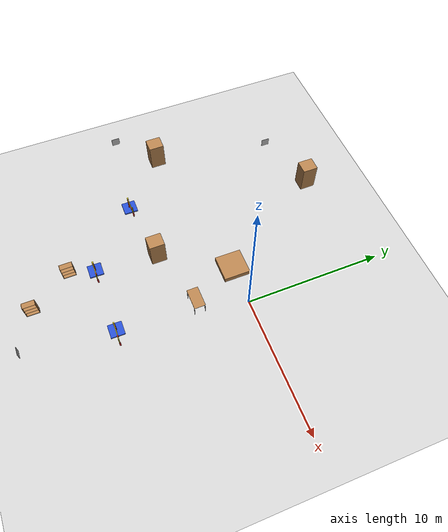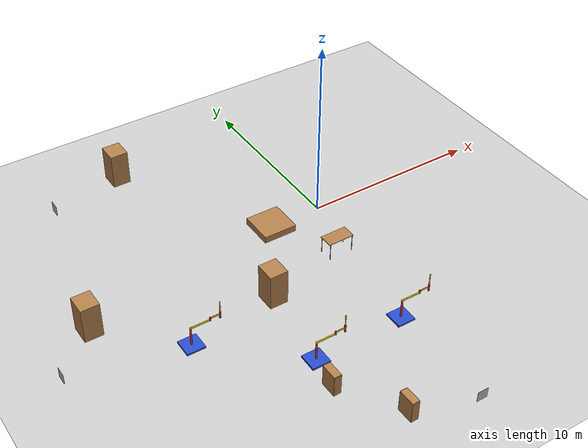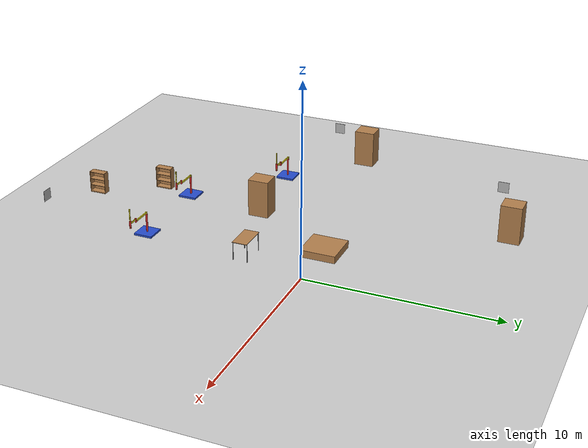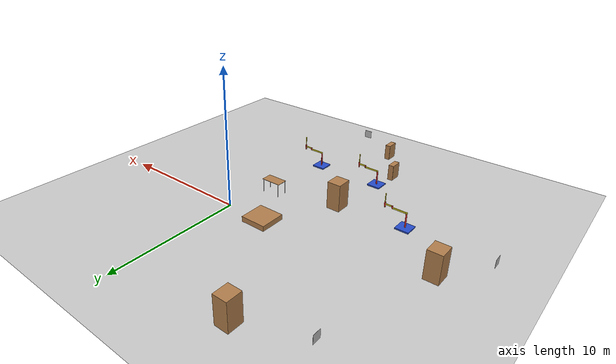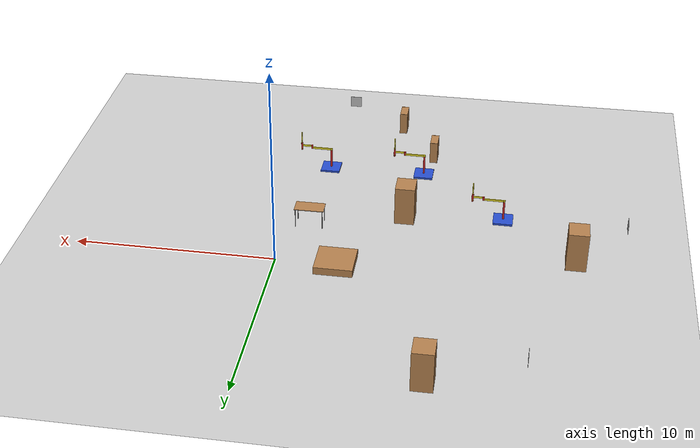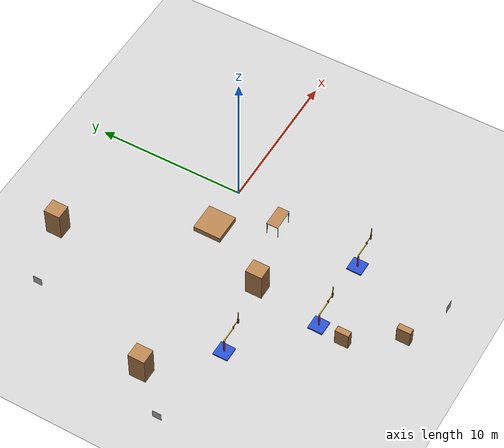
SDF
<sdf version="1.7">
 <world name="default">
  <model name="ground_plane">
   <static>1</static>
   <link name="link">
    <collision name="collision">
     <geometry><plane><normal>0 0 1</normal><size>25 25</size></plane></geometry>
     <surface><friction><ode><mu>100</mu><mu2>50</mu2></ode></friction></surface>
    </collision>
    <visual name="visual">
     <cast_shadows>0</cast_shadows>
     <geometry><plane><normal>0 0 1</normal><size>25 25</size></plane></geometry>
     <material>
      <script><uri>file://media/materials/scripts/gazebo.material</uri><name>Gazebo/Grey</name></script>
     </material>
    </visual>
   </link>
  </model>
  <model name="table">
   <static>0</static>
   <link name="link">
    <collision name="surface">
     <pose>0 0 1 0 -0 0</pose>
     <geometry><box><size>1.5 0.8 0.03</size></box></geometry>
     <surface><friction><ode><mu>0.6</mu><mu2>0.6</mu2></ode></friction></surface>
    </collision>
    <visual name="visual1">
     <pose>0 0 1 0 -0 0</pose>
     <geometry><box><size>1.5 0.8 0.03</size></box></geometry>
     <material>
      <script><uri>file://media/materials/scripts/gazebo.material</uri><name>Gazebo/Wood</name></script>
     </material>
    </visual>
    <collision name="front_left_leg">
     <pose>0.68 0.38 0.5 0 -0 0</pose>
     <geometry><cylinder><radius>0.02</radius><length>1</length></cylinder></geometry>
    </collision>
    <visual name="front_left_leg">
     <pose>0.68 0.38 0.5 0 -0 0</pose>
     <geometry><cylinder><radius>0.02</radius><length>1</length></cylinder></geometry>
     <material>
      <script><uri>file://media/materials/scripts/gazebo.material</uri><name>Gazebo/Grey</name></script>
     </material>
    </visual>
    <collision name="front_right_leg">
     <pose>0.68 -0.38 0.5 0 -0 0</pose>
     <geometry><cylinder><radius>0.02</radius><length>1</length></cylinder></geometry>
    </collision>
    <visual name="front_right_leg">
     <pose>0.68 -0.38 0.5 0 -0 0</pose>
     <geometry><cylinder><radius>0.02</radius><length>1</length></cylinder></geometry>
     <material>
      <script><uri>file://media/materials/scripts/gazebo.material</uri><name>Gazebo/Grey</name></script>
     </material>
    </visual>
    <collision name="back_right_leg">
     <pose>-0.68 -0.38 0.5 0 -0 0</pose>
     <geometry><cylinder><radius>0.02</radius><length>1</length></cylinder></geometry>
    </collision>
    <visual name="back_right_leg">
     <pose>-0.68 -0.38 0.5 0 -0 0</pose>
     <geometry><cylinder><radius>0.02</radius><length>1</length></cylinder></geometry>
     <material>
      <script><uri>file://media/materials/scripts/gazebo.material</uri><name>Gazebo/Grey</name></script>
     </material>
    </visual>
    <collision name="back_left_leg">
     <pose>-0.68 0.38 0.5 0 -0 0</pose>
     <geometry><cylinder><radius>0.02</radius><length>1</length></cylinder></geometry>
    </collision>
    <visual name="back_left_leg">
     <pose>-0.68 0.38 0.5 0 -0 0</pose>
     <geometry><cylinder><radius>0.02</radius><length>1</length></cylinder></geometry>
     <material>
      <script><uri>file://media/materials/scripts/gazebo.material</uri><name>Gazebo/Grey</name></script>
     </material>
    </visual>
    <inertial>
     <inertia><ixx>1</ixx><ixy>0</ixy><ixz>0</ixz><iyy>1</iyy><iyz>0</iyz><izz>1</izz></inertia>
     <mass>1</mass>
    </inertial>
   </link>
   <pose>-1.13936 -3.43966 -8e-06 -4e-06 1.4e-05 0.008417</pose>
  </model>
  <model name="unit_box_0">
   <pose>-2.99922 0.000744 0.193607 5e-06 -0 -0.000955</pose>
   <link name="link">
    <inertial>
     <mass>1</mass>
     <inertia>
      <ixx>0.166667</ixx>
      <ixy>0</ixy>
      <ixz>0</ixz>
      <iyy>0.166667</iyy>
      <iyz>0</iyz>
      <izz>0.166667</izz>
     </inertia>
    </inertial>
    <collision name="collision"><geometry><box><size>1.90824 1.89174 0.387223</size></box></geometry></collision>
    <visual name="visual">
     <geometry><box><size>1.90824 1.89174 0.387223</size></box></geometry>
     <material>
      <script><uri>file://media/materials/scripts/gazebo.material</uri><name>Gazebo/Wood</name></script>
     </material>
    </visual>
   </link>
   <static>0</static>
  </model>
  <model name="static_apriltag_5">
   <link name="link">
    <pose>0 0 0 -1.57 1.57 -0</pose>
    <inertial>
     <mass>0.39</mass>
     <inertia><ixx>0.00058</ixx><ixy>0</ixy><ixz>0</ixz><iyy>0.00058</iyy><iyz>0</iyz><izz>0.00019</izz></inertia>
    </inertial>
    <collision name="collision"><geometry><box><size>0.6 0.6 0.01</size></box></geometry></collision>
    <visual name="visual">
     <geometry><box><size>0.6 0.6 0.01</size></box></geometry>
     <material>
      <script>
       <uri>model://apriltag/materials/scripts</uri>
       <uri>model://apriltag/materials/textures</uri>
       <name>apriltag/Diffuse5</name>
      </script>
     </material>
    </visual>
    <gravity>0</gravity>
   </link>
   <pose>-1.76382 -15.4682 0.799894 0.000796 0.000796 1e-06</pose>
   <static>1</static>
   <pose>5.04082 3.71574 0 0 -0 0</pose>
  </model>
  <model name="static_apriltag_6">
   <link name="link">
    <pose>0 0 0 -1.57 1.57 -0</pose>
    <inertial>
     <mass>0.39</mass>
     <inertia><ixx>0.00058</ixx><ixy>0</ixy><ixz>0</ixz><iyy>0.00058</iyy><iyz>0</iyz><izz>0.00019</izz></inertia>
    </inertial>
    <collision name="collision"><geometry><box><size>0.6 0.6 0.01</size></box></geometry></collision>
    <visual name="visual">
     <geometry><box><size>0.6 0.6 0.01</size></box></geometry>
     <material>
      <script>
       <uri>model://apriltag/materials/scripts</uri>
       <uri>model://apriltag/materials/textures</uri>
       <name>apriltag/Diffuse6</name>
      </script>
     </material>
    </visual>
    <gravity>0</gravity>
   </link>
   <pose>-16.9494 -4.44599 0.799387 -0.000796 0.000796 -1.57</pose>
   <static>1</static>
   <pose>3.43144 4.34187 0 0 -0 0</pose>
  </model>
  <model name="static_apriltag_7">
   <link name="link">
    <inertial>
     <mass>0.39</mass>
     <inertia><ixx>0.00058</ixx><ixy>0</ixy><ixz>0</ixz><iyy>0.00058</iyy><iyz>0</iyz><izz>0.00019</izz></inertia>
    </inertial>
    <collision name="collision"><geometry><box><size>0.6 0.6 0.01</size></box></geometry></collision>
    <visual name="visual">
     <geometry><box><size>0.6 0.6 0.01</size></box></geometry>
     <material>
      <script>
       <uri>model://apriltag/materials/scripts</uri>
       <uri>model://apriltag/materials/textures</uri>
       <name>apriltag/Diffuse7</name>
      </script>
     </material>
    </visual>
    <gravity>0</gravity>
   </link>
   <pose>-12.4513 6.75415 0.8 1.57 -0 1.57</pose>
   <static>1</static>
   <pose>3.12393 4.47604 0 0 -0 0</pose>
  </model>
  <model name="simple_arm">
   <link name="arm_base">
    <inertial>
     <pose>0 0 0.00099 0 -0 0</pose>
     <inertia><ixx>1.11</ixx><ixy>0</ixy><ixz>0</ixz><iyy>100.11</iyy><iyz>0</iyz><izz>1.01</izz></inertia>
     <mass>101</mass>
    </inertial>
    <collision name="arm_base_geom">
     <pose>0 0 0.05 0 -0 0</pose>
     <geometry><box><size>1 1 0.1</size></box></geometry>
    </collision>
    <visual name="arm_base_geom_visual">
     <pose>0 0 0.05 0 -0 0</pose>
     <geometry><box><size>1 1 0.1</size></box></geometry>
     <material>
      <script><uri>file://media/materials/scripts/gazebo.material</uri><name>Gazebo/Blue</name></script>
     </material>
    </visual>
    <collision name="arm_base_geom_arm_trunk">
     <pose>0 0 0.6 0 -0 0</pose>
     <geometry><cylinder><radius>0.05</radius><length>1</length></cylinder></geometry>
    </collision>
    <visual name="arm_base_geom_arm_trunk_visual">
     <pose>0 0 0.6 0 -0 0</pose>
     <geometry><cylinder><radius>0.05</radius><length>1</length></cylinder></geometry>
     <material>
      <script><uri>file://media/materials/scripts/gazebo.material</uri><name>Gazebo/Red</name></script>
     </material>
    </visual>
   </link>
   <link name="arm_shoulder_pan">
    <pose>0 0 1.1 0 -0 0</pose>
    <inertial>
     <pose>0.045455 0 0 0 -0 0</pose>
     <inertia><ixx>0.011</ixx><ixy>0</ixy><ixz>0</ixz><iyy>0.0225</iyy><iyz>0</iyz><izz>0.0135</izz></inertia>
     <mass>1.1</mass>
    </inertial>
    <collision name="arm_shoulder_pan_geom">
     <pose>0 0 0.05 0 -0 0</pose>
     <geometry><cylinder><radius>0.05</radius><length>0.1</length></cylinder></geometry>
    </collision>
    <visual name="arm_shoulder_pan_geom_visual">
     <pose>0 0 0.05 0 -0 0</pose>
     <geometry><cylinder><radius>0.05</radius><length>0.1</length></cylinder></geometry>
     <material>
      <script><uri>file://media/materials/scripts/gazebo.material</uri><name>Gazebo/Yellow</name></script>
     </material>
    </visual>
    <collision name="arm_shoulder_pan_geom_arm_shoulder">
     <pose>0.55 0 0.05 0 -0 0</pose>
     <geometry><box><size>1 0.05 0.1</size></box></geometry>
    </collision>
    <visual name="arm_shoulder_pan_geom_arm_shoulder_visual">
     <pose>0.55 0 0.05 0 -0 0</pose>
     <geometry><box><size>1 0.05 0.1</size></box></geometry>
     <material>
      <script><uri>file://media/materials/scripts/gazebo.material</uri><name>Gazebo/Yellow</name></script>
     </material>
    </visual>
   </link>
   <link name="arm_elbow_pan">
    <pose>1.05 0 1.1 0 -0 0</pose>
    <inertial>
     <pose>0.0875 0 0.083333 0 -0 0</pose>
     <inertia>
      <ixx>0.031</ixx>
      <ixy>0</ixy>
      <ixz>0.005</ixz>
      <iyy>0.07275</iyy>
      <iyz>0</iyz>
      <izz>0.04475</izz>
     </inertia>
     <mass>1.2</mass>
    </inertial>
    <collision name="arm_elbow_pan_geom">
     <pose>0 0 0.1 0 -0 0</pose>
     <geometry><cylinder><radius>0.05</radius><length>0.2</length></cylinder></geometry>
    </collision>
    <visual name="arm_elbow_pan_geom_visual">
     <pose>0 0 0.1 0 -0 0</pose>
     <geometry><cylinder><radius>0.05</radius><length>0.2</length></cylinder></geometry>
     <material>
      <script><uri>file://media/materials/scripts/gazebo.material</uri><name>Gazebo/Red</name></script>
     </material>
    </visual>
    <collision name="arm_elbow_pan_geom_arm_elbow">
     <pose>0.3 0 0.15 0 -0 0</pose>
     <geometry><box><size>0.5 0.03 0.1</size></box></geometry>
    </collision>
    <visual name="arm_elbow_pan_geom_arm_elbow_visual">
     <pose>0.3 0 0.15 0 -0 0</pose>
     <geometry><box><size>0.5 0.03 0.1</size></box></geometry>
     <material>
      <script><uri>file://media/materials/scripts/gazebo.material</uri><name>Gazebo/Yellow</name></script>
     </material>
    </visual>
    <collision name="arm_elbow_pan_geom_arm_wrist">
     <pose>0.55 0 0.15 0 -0 0</pose>
     <geometry><cylinder><radius>0.05</radius><length>0.3</length></cylinder></geometry>
    </collision>
    <visual name="arm_elbow_pan_geom_arm_wrist_visual">
     <pose>0.55 0 0.15 0 -0 0</pose>
     <geometry><cylinder><radius>0.05</radius><length>0.3</length></cylinder></geometry>
     <material>
      <script><uri>file://media/materials/scripts/gazebo.material</uri><name>Gazebo/Red</name></script>
     </material>
    </visual>
   </link>
   <link name="arm_wrist_lift">
    <pose>1.6 0 1.05 0 -0 0</pose>
    <inertial>
     <inertia><ixx>0.01</ixx><ixy>0</ixy><ixz>0</ixz><iyy>0.01</iyy><iyz>0</iyz><izz>0.001</izz></inertia>
     <mass>0.1</mass>
    </inertial>
    <collision name="arm_wrist_lift_geom">
     <pose>0 0 0.5 0 -0 0</pose>
     <geometry><cylinder><radius>0.03</radius><length>1</length></cylinder></geometry>
    </collision>
    <visual name="arm_wrist_lift_geom_visual">
     <pose>0 0 0.5 0 -0 0</pose>
     <geometry><cylinder><radius>0.03</radius><length>1</length></cylinder></geometry>
     <material>
      <script><uri>file://media/materials/scripts/gazebo.material</uri><name>Gazebo/Yellow</name></script>
     </material>
    </visual>
   </link>
   <link name="arm_wrist_roll">
    <pose>1.6 0 1 0 -0 0</pose>
    <inertial>
     <inertia><ixx>0.01</ixx><ixy>0</ixy><ixz>0</ixz><iyy>0.01</iyy><iyz>0</iyz><izz>0.001</izz></inertia>
     <mass>0.1</mass>
    </inertial>
    <collision name="arm_wrist_roll_geom">
     <pose>0 0 0.025 0 -0 0</pose>
     <geometry><cylinder><radius>0.05</radius><length>0.05</length></cylinder></geometry>
    </collision>
    <visual name="arm_wrist_roll_geom_visual">
     <pose>0 0 0.025 0 -0 0</pose>
     <geometry><cylinder><radius>0.05</radius><length>0.05</length></cylinder></geometry>
     <material>
      <script><uri>file://media/materials/scripts/gazebo.material</uri><name>Gazebo/Red</name></script>
     </material>
    </visual>
   </link>
   <joint name="arm_shoulder_pan_joint" type="revolute">
    <parent>arm_base</parent>
    <child>arm_shoulder_pan</child>
    <axis>
     <dynamics>
      <damping>1</damping>
      <friction>0</friction>
      <spring_reference>0</spring_reference>
      <spring_stiffness>0</spring_stiffness>
     </dynamics>
     <xyz expressed_in="__model__">0 0 1</xyz>
     <limit><lower>-1e+16</lower><upper>1e+16</upper></limit>
    </axis>
   </joint>
   <joint name="arm_elbow_pan_joint" type="revolute">
    <parent>arm_shoulder_pan</parent>
    <child>arm_elbow_pan</child>
    <axis>
     <dynamics>
      <damping>1</damping>
      <friction>0</friction>
      <spring_reference>0</spring_reference>
      <spring_stiffness>0</spring_stiffness>
     </dynamics>
     <xyz expressed_in="__model__">0 0 1</xyz>
     <limit><lower>-1e+16</lower><upper>1e+16</upper></limit>
    </axis>
   </joint>
   <joint name="arm_wrist_lift_joint" type="prismatic">
    <parent>arm_elbow_pan</parent>
    <child>arm_wrist_lift</child>
    <axis>
     <dynamics>
      <damping>1</damping>
      <friction>0</friction>
      <spring_reference>0</spring_reference>
      <spring_stiffness>0</spring_stiffness>
     </dynamics>
     <limit><lower>-0.8</lower><upper>0.1</upper></limit>
     <xyz expressed_in="__model__">0 0 1</xyz>
    </axis>
   </joint>
   <joint name="arm_wrist_roll_joint" type="revolute">
    <parent>arm_wrist_lift</parent>
    <child>arm_wrist_roll</child>
    <axis>
     <dynamics>
      <damping>1</damping>
      <friction>0</friction>
      <spring_reference>0</spring_reference>
      <spring_stiffness>0</spring_stiffness>
     </dynamics>
     <limit><lower>-2.99999</lower><upper>2.99999</upper></limit>
     <xyz expressed_in="__model__">0 0 1</xyz>
    </axis>
   </joint>
   <pose>-10.7863 -5.27849 -0 0 -0 -0.006445</pose>
  </model>
  <model name="simple_arm_clone">
   <link name="arm_base">
    <inertial>
     <pose>0 0 0.00099 0 -0 0</pose>
     <inertia><ixx>1.11</ixx><ixy>0</ixy><ixz>0</ixz><iyy>100.11</iyy><iyz>0</iyz><izz>1.01</izz></inertia>
     <mass>101</mass>
    </inertial>
    <collision name="arm_base_geom">
     <pose>0 0 0.05 0 -0 0</pose>
     <geometry><box><size>1 1 0.1</size></box></geometry>
    </collision>
    <visual name="arm_base_geom_visual">
     <pose>0 0 0.05 0 -0 0</pose>
     <geometry><box><size>1 1 0.1</size></box></geometry>
     <material>
      <script><uri>file://media/materials/scripts/gazebo.material</uri><name>Gazebo/Blue</name></script>
     </material>
    </visual>
    <collision name="arm_base_geom_arm_trunk">
     <pose>0 0 0.6 0 -0 0</pose>
     <geometry><cylinder><radius>0.05</radius><length>1</length></cylinder></geometry>
    </collision>
    <visual name="arm_base_geom_arm_trunk_visual">
     <pose>0 0 0.6 0 -0 0</pose>
     <geometry><cylinder><radius>0.05</radius><length>1</length></cylinder></geometry>
     <material>
      <script><uri>file://media/materials/scripts/gazebo.material</uri><name>Gazebo/Red</name></script>
     </material>
    </visual>
   </link>
   <link name="arm_shoulder_pan">
    <pose>0 0 1.1 0 -0 0</pose>
    <inertial>
     <pose>0.045455 0 0 0 -0 0</pose>
     <inertia><ixx>0.011</ixx><ixy>0</ixy><ixz>0</ixz><iyy>0.0225</iyy><iyz>0</iyz><izz>0.0135</izz></inertia>
     <mass>1.1</mass>
    </inertial>
    <collision name="arm_shoulder_pan_geom">
     <pose>0 0 0.05 0 -0 0</pose>
     <geometry><cylinder><radius>0.05</radius><length>0.1</length></cylinder></geometry>
    </collision>
    <visual name="arm_shoulder_pan_geom_visual">
     <pose>0 0 0.05 0 -0 0</pose>
     <geometry><cylinder><radius>0.05</radius><length>0.1</length></cylinder></geometry>
     <material>
      <script><uri>file://media/materials/scripts/gazebo.material</uri><name>Gazebo/Yellow</name></script>
     </material>
    </visual>
    <collision name="arm_shoulder_pan_geom_arm_shoulder">
     <pose>0.55 0 0.05 0 -0 0</pose>
     <geometry><box><size>1 0.05 0.1</size></box></geometry>
    </collision>
    <visual name="arm_shoulder_pan_geom_arm_shoulder_visual">
     <pose>0.55 0 0.05 0 -0 0</pose>
     <geometry><box><size>1 0.05 0.1</size></box></geometry>
     <material>
      <script><uri>file://media/materials/scripts/gazebo.material</uri><name>Gazebo/Yellow</name></script>
     </material>
    </visual>
   </link>
   <link name="arm_elbow_pan">
    <pose>1.05 0 1.1 0 -0 0</pose>
    <inertial>
     <pose>0.0875 0 0.083333 0 -0 0</pose>
     <inertia>
      <ixx>0.031</ixx>
      <ixy>0</ixy>
      <ixz>0.005</ixz>
      <iyy>0.07275</iyy>
      <iyz>0</iyz>
      <izz>0.04475</izz>
     </inertia>
     <mass>1.2</mass>
    </inertial>
    <collision name="arm_elbow_pan_geom">
     <pose>0 0 0.1 0 -0 0</pose>
     <geometry><cylinder><radius>0.05</radius><length>0.2</length></cylinder></geometry>
    </collision>
    <visual name="arm_elbow_pan_geom_visual">
     <pose>0 0 0.1 0 -0 0</pose>
     <geometry><cylinder><radius>0.05</radius><length>0.2</length></cylinder></geometry>
     <material>
      <script><uri>file://media/materials/scripts/gazebo.material</uri><name>Gazebo/Red</name></script>
     </material>
    </visual>
    <collision name="arm_elbow_pan_geom_arm_elbow">
     <pose>0.3 0 0.15 0 -0 0</pose>
     <geometry><box><size>0.5 0.03 0.1</size></box></geometry>
    </collision>
    <visual name="arm_elbow_pan_geom_arm_elbow_visual">
     <pose>0.3 0 0.15 0 -0 0</pose>
     <geometry><box><size>0.5 0.03 0.1</size></box></geometry>
     <material>
      <script><uri>file://media/materials/scripts/gazebo.material</uri><name>Gazebo/Yellow</name></script>
     </material>
    </visual>
    <collision name="arm_elbow_pan_geom_arm_wrist">
     <pose>0.55 0 0.15 0 -0 0</pose>
     <geometry><cylinder><radius>0.05</radius><length>0.3</length></cylinder></geometry>
    </collision>
    <visual name="arm_elbow_pan_geom_arm_wrist_visual">
     <pose>0.55 0 0.15 0 -0 0</pose>
     <geometry><cylinder><radius>0.05</radius><length>0.3</length></cylinder></geometry>
     <material>
      <script><uri>file://media/materials/scripts/gazebo.material</uri><name>Gazebo/Red</name></script>
     </material>
    </visual>
   </link>
   <link name="arm_wrist_lift">
    <pose>1.6 0 1.05 0 -0 0</pose>
    <inertial>
     <inertia><ixx>0.01</ixx><ixy>0</ixy><ixz>0</ixz><iyy>0.01</iyy><iyz>0</iyz><izz>0.001</izz></inertia>
     <mass>0.1</mass>
    </inertial>
    <collision name="arm_wrist_lift_geom">
     <pose>0 0 0.5 0 -0 0</pose>
     <geometry><cylinder><radius>0.03</radius><length>1</length></cylinder></geometry>
    </collision>
    <visual name="arm_wrist_lift_geom_visual">
     <pose>0 0 0.5 0 -0 0</pose>
     <geometry><cylinder><radius>0.03</radius><length>1</length></cylinder></geometry>
     <material>
      <script><uri>file://media/materials/scripts/gazebo.material</uri><name>Gazebo/Yellow</name></script>
     </material>
    </visual>
   </link>
   <link name="arm_wrist_roll">
    <pose>1.6 0 1 0 -0 0</pose>
    <inertial>
     <inertia><ixx>0.01</ixx><ixy>0</ixy><ixz>0</ixz><iyy>0.01</iyy><iyz>0</iyz><izz>0.001</izz></inertia>
     <mass>0.1</mass>
    </inertial>
    <collision name="arm_wrist_roll_geom">
     <pose>0 0 0.025 0 -0 0</pose>
     <geometry><cylinder><radius>0.05</radius><length>0.05</length></cylinder></geometry>
    </collision>
    <visual name="arm_wrist_roll_geom_visual">
     <pose>0 0 0.025 0 -0 0</pose>
     <geometry><cylinder><radius>0.05</radius><length>0.05</length></cylinder></geometry>
     <material>
      <script><uri>file://media/materials/scripts/gazebo.material</uri><name>Gazebo/Red</name></script>
     </material>
    </visual>
   </link>
   <joint name="arm_shoulder_pan_joint" type="revolute">
    <parent>arm_base</parent>
    <child>arm_shoulder_pan</child>
    <axis>
     <dynamics>
      <damping>1</damping>
      <friction>0</friction>
      <spring_reference>0</spring_reference>
      <spring_stiffness>0</spring_stiffness>
     </dynamics>
     <xyz expressed_in="__model__">0 0 1</xyz>
     <limit><lower>-1e+16</lower><upper>1e+16</upper></limit>
    </axis>
   </joint>
   <joint name="arm_elbow_pan_joint" type="revolute">
    <parent>arm_shoulder_pan</parent>
    <child>arm_elbow_pan</child>
    <axis>
     <dynamics>
      <damping>1</damping>
      <friction>0</friction>
      <spring_reference>0</spring_reference>
      <spring_stiffness>0</spring_stiffness>
     </dynamics>
     <xyz expressed_in="__model__">0 0 1</xyz>
     <limit><lower>-1e+16</lower><upper>1e+16</upper></limit>
    </axis>
   </joint>
   <joint name="arm_wrist_lift_joint" type="prismatic">
    <parent>arm_elbow_pan</parent>
    <child>arm_wrist_lift</child>
    <axis>
     <dynamics>
      <damping>1</damping>
      <friction>0</friction>
      <spring_reference>0</spring_reference>
      <spring_stiffness>0</spring_stiffness>
     </dynamics>
     <limit><lower>-0.8</lower><upper>0.1</upper></limit>
     <xyz expressed_in="__model__">0 0 1</xyz>
    </axis>
   </joint>
   <joint name="arm_wrist_roll_joint" type="revolute">
    <parent>arm_wrist_lift</parent>
    <child>arm_wrist_roll</child>
    <axis>
     <dynamics>
      <damping>1</damping>
      <friction>0</friction>
      <spring_reference>0</spring_reference>
      <spring_stiffness>0</spring_stiffness>
     </dynamics>
     <limit><lower>-2.99999</lower><upper>2.99999</upper></limit>
     <xyz expressed_in="__model__">0 0 1</xyz>
    </axis>
   </joint>
   <pose>-1.32699 -9.13308 -0 0 -0 -0.008676</pose>
  </model>
  <model name="simple_arm_clone_0">
   <link name="arm_base">
    <inertial>
     <pose>0 0 0.00099 0 -0 0</pose>
     <inertia><ixx>1.11</ixx><ixy>0</ixy><ixz>0</ixz><iyy>100.11</iyy><iyz>0</iyz><izz>1.01</izz></inertia>
     <mass>101</mass>
    </inertial>
    <collision name="arm_base_geom">
     <pose>0 0 0.05 0 -0 0</pose>
     <geometry><box><size>1 1 0.1</size></box></geometry>
    </collision>
    <visual name="arm_base_geom_visual">
     <pose>0 0 0.05 0 -0 0</pose>
     <geometry><box><size>1 1 0.1</size></box></geometry>
     <material>
      <script><uri>file://media/materials/scripts/gazebo.material</uri><name>Gazebo/Blue</name></script>
     </material>
    </visual>
    <collision name="arm_base_geom_arm_trunk">
     <pose>0 0 0.6 0 -0 0</pose>
     <geometry><cylinder><radius>0.05</radius><length>1</length></cylinder></geometry>
    </collision>
    <visual name="arm_base_geom_arm_trunk_visual">
     <pose>0 0 0.6 0 -0 0</pose>
     <geometry><cylinder><radius>0.05</radius><length>1</length></cylinder></geometry>
     <material>
      <script><uri>file://media/materials/scripts/gazebo.material</uri><name>Gazebo/Red</name></script>
     </material>
    </visual>
   </link>
   <link name="arm_shoulder_pan">
    <pose>0 0 1.1 0 -0 0</pose>
    <inertial>
     <pose>0.045455 0 0 0 -0 0</pose>
     <inertia><ixx>0.011</ixx><ixy>0</ixy><ixz>0</ixz><iyy>0.0225</iyy><iyz>0</iyz><izz>0.0135</izz></inertia>
     <mass>1.1</mass>
    </inertial>
    <collision name="arm_shoulder_pan_geom">
     <pose>0 0 0.05 0 -0 0</pose>
     <geometry><cylinder><radius>0.05</radius><length>0.1</length></cylinder></geometry>
    </collision>
    <visual name="arm_shoulder_pan_geom_visual">
     <pose>0 0 0.05 0 -0 0</pose>
     <geometry><cylinder><radius>0.05</radius><length>0.1</length></cylinder></geometry>
     <material>
      <script><uri>file://media/materials/scripts/gazebo.material</uri><name>Gazebo/Yellow</name></script>
     </material>
    </visual>
    <collision name="arm_shoulder_pan_geom_arm_shoulder">
     <pose>0.55 0 0.05 0 -0 0</pose>
     <geometry><box><size>1 0.05 0.1</size></box></geometry>
    </collision>
    <visual name="arm_shoulder_pan_geom_arm_shoulder_visual">
     <pose>0.55 0 0.05 0 -0 0</pose>
     <geometry><box><size>1 0.05 0.1</size></box></geometry>
     <material>
      <script><uri>file://media/materials/scripts/gazebo.material</uri><name>Gazebo/Yellow</name></script>
     </material>
    </visual>
   </link>
   <link name="arm_elbow_pan">
    <pose>1.05 0 1.1 0 -0 0</pose>
    <inertial>
     <pose>0.0875 0 0.083333 0 -0 0</pose>
     <inertia>
      <ixx>0.031</ixx>
      <ixy>0</ixy>
      <ixz>0.005</ixz>
      <iyy>0.07275</iyy>
      <iyz>0</iyz>
      <izz>0.04475</izz>
     </inertia>
     <mass>1.2</mass>
    </inertial>
    <collision name="arm_elbow_pan_geom">
     <pose>0 0 0.1 0 -0 0</pose>
     <geometry><cylinder><radius>0.05</radius><length>0.2</length></cylinder></geometry>
    </collision>
    <visual name="arm_elbow_pan_geom_visual">
     <pose>0 0 0.1 0 -0 0</pose>
     <geometry><cylinder><radius>0.05</radius><length>0.2</length></cylinder></geometry>
     <material>
      <script><uri>file://media/materials/scripts/gazebo.material</uri><name>Gazebo/Red</name></script>
     </material>
    </visual>
    <collision name="arm_elbow_pan_geom_arm_elbow">
     <pose>0.3 0 0.15 0 -0 0</pose>
     <geometry><box><size>0.5 0.03 0.1</size></box></geometry>
    </collision>
    <visual name="arm_elbow_pan_geom_arm_elbow_visual">
     <pose>0.3 0 0.15 0 -0 0</pose>
     <geometry><box><size>0.5 0.03 0.1</size></box></geometry>
     <material>
      <script><uri>file://media/materials/scripts/gazebo.material</uri><name>Gazebo/Yellow</name></script>
     </material>
    </visual>
    <collision name="arm_elbow_pan_geom_arm_wrist">
     <pose>0.55 0 0.15 0 -0 0</pose>
     <geometry><cylinder><radius>0.05</radius><length>0.3</length></cylinder></geometry>
    </collision>
    <visual name="arm_elbow_pan_geom_arm_wrist_visual">
     <pose>0.55 0 0.15 0 -0 0</pose>
     <geometry><cylinder><radius>0.05</radius><length>0.3</length></cylinder></geometry>
     <material>
      <script><uri>file://media/materials/scripts/gazebo.material</uri><name>Gazebo/Red</name></script>
     </material>
    </visual>
   </link>
   <link name="arm_wrist_lift">
    <pose>1.6 0 1.05 0 -0 0</pose>
    <inertial>
     <inertia><ixx>0.01</ixx><ixy>0</ixy><ixz>0</ixz><iyy>0.01</iyy><iyz>0</iyz><izz>0.001</izz></inertia>
     <mass>0.1</mass>
    </inertial>
    <collision name="arm_wrist_lift_geom">
     <pose>0 0 0.5 0 -0 0</pose>
     <geometry><cylinder><radius>0.03</radius><length>1</length></cylinder></geometry>
    </collision>
    <visual name="arm_wrist_lift_geom_visual">
     <pose>0 0 0.5 0 -0 0</pose>
     <geometry><cylinder><radius>0.03</radius><length>1</length></cylinder></geometry>
     <material>
      <script><uri>file://media/materials/scripts/gazebo.material</uri><name>Gazebo/Yellow</name></script>
     </material>
    </visual>
   </link>
   <link name="arm_wrist_roll">
    <pose>1.6 0 1 0 -0 0</pose>
    <inertial>
     <inertia><ixx>0.01</ixx><ixy>0</ixy><ixz>0</ixz><iyy>0.01</iyy><iyz>0</iyz><izz>0.001</izz></inertia>
     <mass>0.1</mass>
    </inertial>
    <collision name="arm_wrist_roll_geom">
     <pose>0 0 0.025 0 -0 0</pose>
     <geometry><cylinder><radius>0.05</radius><length>0.05</length></cylinder></geometry>
    </collision>
    <visual name="arm_wrist_roll_geom_visual">
     <pose>0 0 0.025 0 -0 0</pose>
     <geometry><cylinder><radius>0.05</radius><length>0.05</length></cylinder></geometry>
     <material>
      <script><uri>file://media/materials/scripts/gazebo.material</uri><name>Gazebo/Red</name></script>
     </material>
    </visual>
   </link>
   <joint name="arm_shoulder_pan_joint" type="revolute">
    <parent>arm_base</parent>
    <child>arm_shoulder_pan</child>
    <axis>
     <dynamics>
      <damping>1</damping>
      <friction>0</friction>
      <spring_reference>0</spring_reference>
      <spring_stiffness>0</spring_stiffness>
     </dynamics>
     <xyz expressed_in="__model__">0 0 1</xyz>
     <limit><lower>-1e+16</lower><upper>1e+16</upper></limit>
    </axis>
   </joint>
   <joint name="arm_elbow_pan_joint" type="revolute">
    <parent>arm_shoulder_pan</parent>
    <child>arm_elbow_pan</child>
    <axis>
     <dynamics>
      <damping>1</damping>
      <friction>0</friction>
      <spring_reference>0</spring_reference>
      <spring_stiffness>0</spring_stiffness>
     </dynamics>
     <xyz expressed_in="__model__">0 0 1</xyz>
     <limit><lower>-1e+16</lower><upper>1e+16</upper></limit>
    </axis>
   </joint>
   <joint name="arm_wrist_lift_joint" type="prismatic">
    <parent>arm_elbow_pan</parent>
    <child>arm_wrist_lift</child>
    <axis>
     <dynamics>
      <damping>1</damping>
      <friction>0</friction>
      <spring_reference>0</spring_reference>
      <spring_stiffness>0</spring_stiffness>
     </dynamics>
     <limit><lower>-0.8</lower><upper>0.1</upper></limit>
     <xyz expressed_in="__model__">0 0 1</xyz>
    </axis>
   </joint>
   <joint name="arm_wrist_roll_joint" type="revolute">
    <parent>arm_wrist_lift</parent>
    <child>arm_wrist_roll</child>
    <axis>
     <dynamics>
      <damping>1</damping>
      <friction>0</friction>
      <spring_reference>0</spring_reference>
      <spring_stiffness>0</spring_stiffness>
     </dynamics>
     <limit><lower>-2.99999</lower><upper>2.99999</upper></limit>
     <xyz expressed_in="__model__">0 0 1</xyz>
    </axis>
   </joint>
   <pose>-6.34372 -9.19745 -0 0 -0 -0.008681</pose>
  </model>
  <model name="bookshelf_clone">
   <static>1</static>
   <link name="link">
    <inertial><mass>1</mass></inertial>
    <collision name="back">
     <pose>0 0.005 0.6 0 -0 0</pose>
     <geometry><box><size>0.9 0.01 1.2</size></box></geometry>
    </collision>
    <visual name="visual1">
     <pose>0 0.005 0.6 0 -0 0</pose>
     <geometry><box><size>0.9 0.01 1.2</size></box></geometry>
     <material>
      <script><uri>file://media/materials/scripts/gazebo.material</uri><name>Gazebo/Wood</name></script>
     </material>
    </visual>
    <collision name="left_side">
     <pose>0.45 -0.195 0.6 0 -0 0</pose>
     <geometry><box><size>0.02 0.4 1.2</size></box></geometry>
    </collision>
    <visual name="visual2">
     <pose>0.45 -0.195 0.6 0 -0 0</pose>
     <geometry><box><size>0.02 0.4 1.2</size></box></geometry>
     <material>
      <script><uri>file://media/materials/scripts/gazebo.material</uri><name>Gazebo/Wood</name></script>
     </material>
    </visual>
    <collision name="right_side">
     <pose>-0.45 -0.195 0.6 0 -0 0</pose>
     <geometry><box><size>0.02 0.4 1.2</size></box></geometry>
    </collision>
    <visual name="visual3">
     <pose>-0.45 -0.195 0.6 0 -0 0</pose>
     <geometry><box><size>0.02 0.4 1.2</size></box></geometry>
     <material>
      <script><uri>file://media/materials/scripts/gazebo.material</uri><name>Gazebo/Wood</name></script>
     </material>
    </visual>
    <collision name="bottom">
     <pose>0 -0.195 0.03 0 -0 0</pose>
     <geometry><box><size>0.88 0.4 0.06</size></box></geometry>
    </collision>
    <visual name="visual4">
     <pose>0 -0.195 0.03 0 -0 0</pose>
     <geometry><box><size>0.88 0.4 0.06</size></box></geometry>
     <material>
      <script><uri>file://media/materials/scripts/gazebo.material</uri><name>Gazebo/Wood</name></script>
     </material>
    </visual>
    <collision name="top">
     <pose>0 -0.195 1.19 0 -0 0</pose>
     <geometry><box><size>0.88 0.4 0.02</size></box></geometry>
    </collision>
    <visual name="visual5">
     <pose>0 -0.195 1.19 0 -0 0</pose>
     <geometry><box><size>0.88 0.4 0.02</size></box></geometry>
     <material>
      <script><uri>file://media/materials/scripts/gazebo.material</uri><name>Gazebo/Wood</name></script>
     </material>
    </visual>
    <collision name="low_shelf">
     <pose>0 -0.195 0.43 0 -0 0</pose>
     <geometry><box><size>0.88 0.4 0.02</size></box></geometry>
    </collision>
    <visual name="visual6">
     <pose>0 -0.195 0.43 0 -0 0</pose>
     <geometry><box><size>0.88 0.4 0.02</size></box></geometry>
     <material>
      <script><uri>file://media/materials/scripts/gazebo.material</uri><name>Gazebo/Wood</name></script>
     </material>
    </visual>
    <collision name="high_shelf">
     <pose>0 -0.195 0.8 0 -0 0</pose>
     <geometry><box><size>0.88 0.4 0.02</size></box></geometry>
    </collision>
    <visual name="visual7">
     <pose>0 -0.195 0.8 0 -0 0</pose>
     <geometry><box><size>0.88 0.4 0.02</size></box></geometry>
     <material>
      <script><uri>file://media/materials/scripts/gazebo.material</uri><name>Gazebo/Wood</name></script>
     </material>
    </visual>
   </link>
   <pose>-6.91893 -11.004 0 0 -0 1.57</pose>
  </model>
  <model name="bookshelf_clone_1">
   <static>1</static>
   <link name="link">
    <inertial><mass>1</mass></inertial>
    <collision name="back">
     <pose>0 0.005 0.6 0 -0 0</pose>
     <geometry><box><size>0.9 0.01 1.2</size></box></geometry>
    </collision>
    <visual name="visual1">
     <pose>0 0.005 0.6 0 -0 0</pose>
     <geometry><box><size>0.9 0.01 1.2</size></box></geometry>
     <material>
      <script><uri>file://media/materials/scripts/gazebo.material</uri><name>Gazebo/Wood</name></script>
     </material>
    </visual>
    <collision name="left_side">
     <pose>0.45 -0.195 0.6 0 -0 0</pose>
     <geometry><box><size>0.02 0.4 1.2</size></box></geometry>
    </collision>
    <visual name="visual2">
     <pose>0.45 -0.195 0.6 0 -0 0</pose>
     <geometry><box><size>0.02 0.4 1.2</size></box></geometry>
     <material>
      <script><uri>file://media/materials/scripts/gazebo.material</uri><name>Gazebo/Wood</name></script>
     </material>
    </visual>
    <collision name="right_side">
     <pose>-0.45 -0.195 0.6 0 -0 0</pose>
     <geometry><box><size>0.02 0.4 1.2</size></box></geometry>
    </collision>
    <visual name="visual3">
     <pose>-0.45 -0.195 0.6 0 -0 0</pose>
     <geometry><box><size>0.02 0.4 1.2</size></box></geometry>
     <material>
      <script><uri>file://media/materials/scripts/gazebo.material</uri><name>Gazebo/Wood</name></script>
     </material>
    </visual>
    <collision name="bottom">
     <pose>0 -0.195 0.03 0 -0 0</pose>
     <geometry><box><size>0.88 0.4 0.06</size></box></geometry>
    </collision>
    <visual name="visual4">
     <pose>0 -0.195 0.03 0 -0 0</pose>
     <geometry><box><size>0.88 0.4 0.06</size></box></geometry>
     <material>
      <script><uri>file://media/materials/scripts/gazebo.material</uri><name>Gazebo/Wood</name></script>
     </material>
    </visual>
    <collision name="top">
     <pose>0 -0.195 1.19 0 -0 0</pose>
     <geometry><box><size>0.88 0.4 0.02</size></box></geometry>
    </collision>
    <visual name="visual5">
     <pose>0 -0.195 1.19 0 -0 0</pose>
     <geometry><box><size>0.88 0.4 0.02</size></box></geometry>
     <material>
      <script><uri>file://media/materials/scripts/gazebo.material</uri><name>Gazebo/Wood</name></script>
     </material>
    </visual>
    <collision name="low_shelf">
     <pose>0 -0.195 0.43 0 -0 0</pose>
     <geometry><box><size>0.88 0.4 0.02</size></box></geometry>
    </collision>
    <visual name="visual6">
     <pose>0 -0.195 0.43 0 -0 0</pose>
     <geometry><box><size>0.88 0.4 0.02</size></box></geometry>
     <material>
      <script><uri>file://media/materials/scripts/gazebo.material</uri><name>Gazebo/Wood</name></script>
     </material>
    </visual>
    <collision name="high_shelf">
     <pose>0 -0.195 0.8 0 -0 0</pose>
     <geometry><box><size>0.88 0.4 0.02</size></box></geometry>
    </collision>
    <visual name="visual7">
     <pose>0 -0.195 0.8 0 -0 0</pose>
     <geometry><box><size>0.88 0.4 0.02</size></box></geometry>
     <material>
      <script><uri>file://media/materials/scripts/gazebo.material</uri><name>Gazebo/Wood</name></script>
     </material>
    </visual>
   </link>
   <pose>-4.92762 -14.0554 0 0 -0 1.57</pose>
  </model>
  <model name="unit_box_clone">
   <pose>-5.84565 -4.68859 1.01795 -4e-06 2e-06 0.001908</pose>
   <link name="link">
    <inertial>
     <mass>1</mass>
     <inertia>
      <ixx>0.166667</ixx>
      <ixy>0</ixy>
      <ixz>0</ixz>
      <iyy>0.166667</iyy>
      <iyz>0</iyz>
      <izz>0.166667</izz>
     </inertia>
    </inertial>
    <collision name="collision"><geometry><box><size>1 1.11313 2.03591</size></box></geometry></collision>
    <visual name="visual">
     <geometry><box><size>1 1.11313 2.03591</size></box></geometry>
     <material>
      <script><uri>file://media/materials/scripts/gazebo.material</uri><name>Gazebo/Wood</name></script>
     </material>
    </visual>
   </link>
   <static>0</static>
  </model>
  <model name="unit_box_clone_0">
   <pose>-14.4595 -1.84525 1.01795 1e-06 -1e-06 0.001827</pose>
   <link name="link">
    <inertial>
     <mass>1</mass>
     <inertia>
      <ixx>0.166667</ixx>
      <ixy>0</ixy>
      <ixz>0</ixz>
      <iyy>0.166667</iyy>
      <iyz>0</iyz>
      <izz>0.166667</izz>
     </inertia>
    </inertial>
    <collision name="collision"><geometry><box><size>1 1.11313 2.03591</size></box></geometry></collision>
    <visual name="visual">
     <geometry><box><size>1 1.11313 2.03591</size></box></geometry>
     <material>
      <script><uri>file://media/materials/scripts/gazebo.material</uri><name>Gazebo/Wood</name></script>
     </material>
    </visual>
   </link>
   <static>0</static>
  </model>
  <model name="unit_box_clone_1">
   <pose>-8.06789 8.23692 1.01795 -4e-06 2e-06 0.001793</pose>
   <link name="link">
    <inertial>
     <mass>1</mass>
     <inertia>
      <ixx>0.166667</ixx>
      <ixy>0</ixy>
      <ixz>0</ixz>
      <iyy>0.166667</iyy>
      <iyz>0</iyz>
      <izz>0.166667</izz>
     </inertia>
    </inertial>
    <collision name="collision"><geometry><box><size>1 1.11313 2.03591</size></box></geometry></collision>
    <visual name="visual">
     <geometry><box><size>1 1.11313 2.03591</size></box></geometry>
     <material>
      <script><uri>file://media/materials/scripts/gazebo.material</uri><name>Gazebo/Wood</name></script>
     </material>
    </visual>
   </link>
   <static>0</static>
  </model>
 </world>
</sdf>
